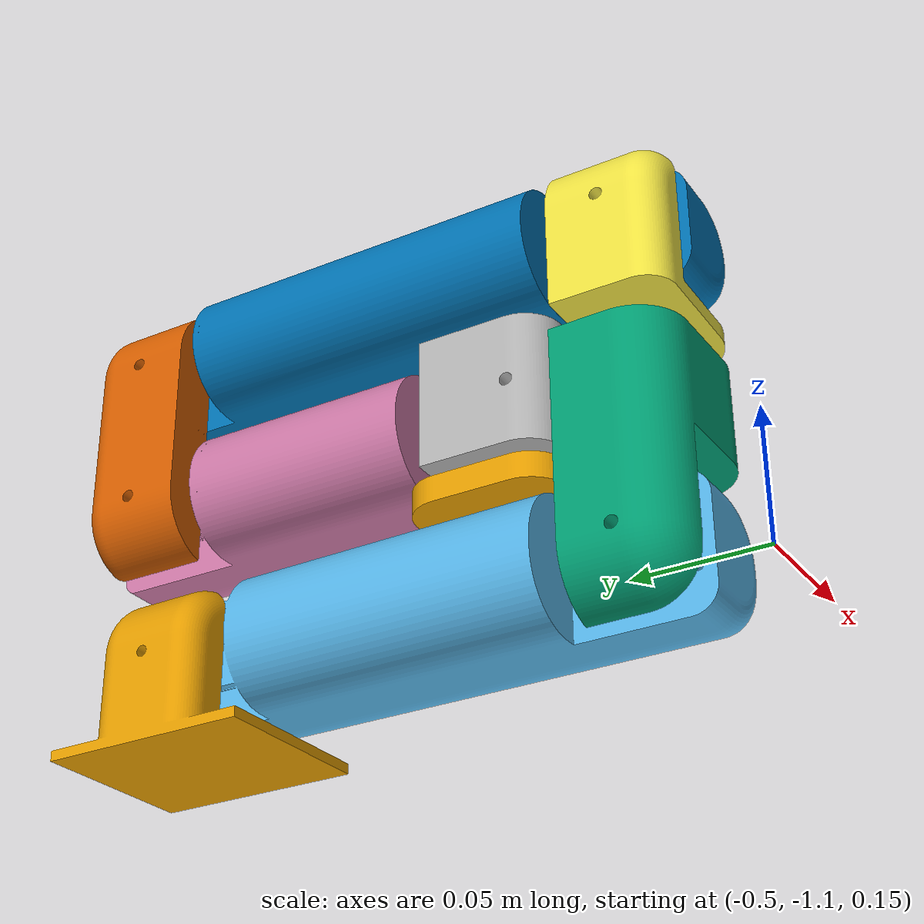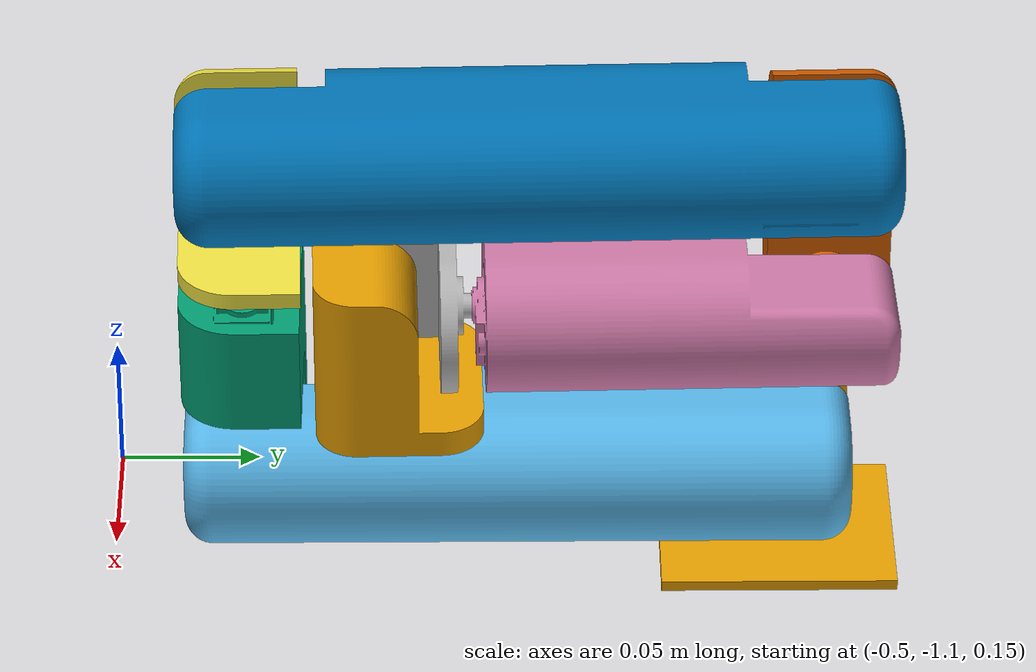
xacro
<?xml version="1.0"?>
<robot xmlns:xacro="http://www.ros.org/wiki/xacro" name="arm2">
    <xacro:arg name="initial_positions_file" default="initial_positions.yaml" />

    <!-- Import arm2 urdf file -->
    <xacro:include filename="$(find arm2_description)/urdf/model.urdf" />

    <!-- Import control_xacro -->
    <xacro:include filename="arm2.ros2_control.xacro" />

    <xacro:arm2_ros2_control name="FakeSystem" />

</robot>

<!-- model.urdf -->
<robot name="arm2">
    <link name="base_link">
        <inertial>
            <origin xyz="-0.4978620384464306 -0.8602252270366714 0.14881945263357563"
                rpy="0.0 0.0 0.0" />
            <mass value="0.5289635796710868" />
            <inertia ixx="0.00034742150662819826" iyy="0.00033835491346662083"
                izz="0.00032653734961951564" ixy="7.4018092550975894e-06"
                iyz="-8.576313641331372e-06" ixz="7.973460484756584e-05" />
        </inertial>
        <visual name="base_link_visual">
            <origin xyz="0.0 0.0 0.0" rpy="0.0 0.0 0.0" />
            <geometry>
                <mesh filename="package://arm2_description/meshes/base_link.stl"
                    scale="0.001 0.001 0.001" />
            </geometry>
        </visual>
        <collision name="base_link_collision">
            <origin xyz="0.0 0.0 0.0" rpy="0.0 0.0 0.0" />
            <geometry>
                <mesh filename="package://arm2_description/meshes/base_link.stl"
                    scale="0.001 0.001 0.001" />
            </geometry>
        </collision>
    </link>
    <link name="arm_1">
        <inertial>
            <origin xyz="0.001468958902272739 -0.09755592156138476 -0.014383547671648955"
                rpy="0.0 -0.0 0.0" />
            <mass value="4.692702425103448" />
            <inertia ixx="0.018450371432606083" iyy="0.0022924316231949238"
                izz="0.018033331112635942" ixy="7.6200128962256e-07" iyz="0.00011766538318312717"
                ixz="3.360163822862139e-07" />
        </inertial>
        <visual name="arm_1_visual">
            <origin xyz="0.09652492537393506 0.9603418934556679 -0.600508235246513"
                rpy="7.893518669522489e-31 -1.5707963267948928 0" />
            <geometry>
                <mesh filename="package://arm2_description/meshes/arm_1.stl"
                    scale="0.001 0.001 0.001" />
            </geometry>
        </visual>
        <collision name="arm_1_collision">
            <origin xyz="0.09652492537393506 0.9603418934556679 -0.600508235246513"
                rpy="7.893518669522489e-31 -1.5707963267948928 0" />
            <geometry>
                <mesh filename="package://arm2_description/meshes/arm_1.stl"
                    scale="0.001 0.001 0.001" />
            </geometry>
        </collision>
    </link>
    <link name="arm_2">
        <inertial>
            <origin xyz="0.04646050510372611 0.00025955415157682184 0.004747670168694924"
                rpy="0.0 -0.0 0.0" />
            <mass value="1.202796183767878" />
            <inertia ixx="0.0006837825937870967" iyy="0.001320285018742151"
                izz="0.0009831727585649652" ixy="-1.961546090556313e-05"
                iyz="-1.193799392462537e-05" ixz="-0.00030321665398197456" />
        </inertial>
        <visual name="arm_2_visual">
            <origin xyz="0.033999999458183584 0.005000003956452446 -0.007500002965190689"
                rpy="1.5707963267949017 2.105251958897056e-15 8.268195910819235e-30" />
            <geometry>
                <mesh filename="package://arm2_description/meshes/arm_2.stl"
                    scale="0.001 0.001 0.001" />
            </geometry>
        </visual>
        <collision name="arm_2_collision">
            <origin xyz="0.033999999458183584 0.005000003956452446 -0.007500002965190689"
                rpy="1.5707963267949017 2.105251958897056e-15 8.268195910819235e-30" />
            <geometry>
                <mesh filename="package://arm2_description/meshes/arm_2.stl"
                    scale="0.001 0.001 0.001" />
            </geometry>
        </collision>
    </link>
    <link name="arm_3">
        <inertial>
            <origin xyz="0.029049151328160827 0.0010410322621982005 -0.01733873965324655"
                rpy="-1.8868807888022411e-90 -0.0 0.0" />
            <mass value="0.46385857953142046" />
            <inertia ixx="0.00018515491356319025" iyy="0.0002833506080626158"
                izz="0.00023136504069264633" ixy="3.3737295296328777e-07"
                iyz="6.001949390543048e-07" ixz="6.527822290304697e-05" />
        </inertial>
        <visual name="arm_3_visual">
            <origin xyz="0.002024925374062079 -1.1475942034556579 0.5320082352465172"
                rpy="1.5707963267948988 4.855169349603931e-17 1.570796326794979" />
            <geometry>
                <mesh filename="package://arm2_description/meshes/arm_3.stl"
                    scale="0.001 0.001 0.001" />
            </geometry>
        </visual>
        <collision name="arm_3_collision">
            <origin xyz="0.002024925374062079 -1.1475942034556579 0.5320082352465172"
                rpy="1.5707963267948988 4.855169349603931e-17 1.570796326794979" />
            <geometry>
                <mesh filename="package://arm2_description/meshes/arm_3.stl"
                    scale="0.001 0.001 0.001" />
            </geometry>
        </collision>
    </link>
    <link name="arm_4">
        <inertial>
            <origin xyz="-0.014457391368257718 0.00014607877796755987 -0.10326662740779441"
                rpy="1.577721810442024e-30 3.469446951950197e-18 -4.930380657631325e-32" />
            <mass value="4.838851771004671" />
            <inertia ixx="0.020512356223124435" iyy="0.021126873659128798"
                izz="0.0023305019136294802" ixy="7.331755276813214e-06" iyz="3.902695496726724e-05"
                ixz="-0.00011555949347316878" />
        </inertial>
        <visual name="arm_4_visual">
            <origin xyz="-0.5746179782026112 0.050697554618139726 -1.1357245098281386"
                rpy="1.5707963267949803 -1.5707963267948017 0" />
            <geometry>
                <mesh filename="package://arm2_description/meshes/arm_4.stl"
                    scale="0.001 0.001 0.001" />
            </geometry>
        </visual>
        <collision name="arm_4_collision">
            <origin xyz="-0.5746179782026112 0.050697554618139726 -1.1357245098281386"
                rpy="1.5707963267949803 -1.5707963267948017 0" />
            <geometry>
                <mesh filename="package://arm2_description/meshes/arm_4.stl"
                    scale="0.001 0.001 0.001" />
            </geometry>
        </collision>
    </link>
    <link name="arm_5">
        <inertial>
            <origin xyz="-0.014560508261271962 -0.030127811176536633 -5.3502466136592376e-05"
                rpy="0.0 4.226342840682485e-43 -1.4012984643248174e-45" />
            <mass value="0.6582703916464507" />
            <inertia ixx="0.0006403762308376801" iyy="0.00012241957194325526"
                izz="0.0005607234072720344" ixy="-1.0392954136307448e-09"
                iyz="-9.114859291995704e-10" ixz="3.6663628621989487e-07" />
        </inertial>
        <visual name="arm_5_visual">
            <origin xyz="0.4893813691929647 -0.3042295778741226 -1.0899899878866102"
                rpy="-1.5707963267947789 0.02238380577389224 7.76271511819099e-14" />
            <geometry>
                <mesh filename="package://arm2_description/meshes/arm_5.stl"
                    scale="0.001 0.001 0.001" />
            </geometry>
        </visual>
        <collision name="arm_5_collision">
            <origin xyz="0.4893813691929647 -0.3042295778741226 -1.0899899878866102"
                rpy="-1.5707963267947789 0.02238380577389224 7.76271511819099e-14" />
            <geometry>
                <mesh filename="package://arm2_description/meshes/arm_5.stl"
                    scale="0.001 0.001 0.001" />
            </geometry>
        </collision>
    </link>
    <link name="arm_6">
        <inertial>
            <origin xyz="-0.0004855266709942896 -0.06097699224107018 -0.013620188460791027"
                rpy="4.552772925024232e-72 -0.0 0.0" />
            <mass value="2.7005914040272287" />
            <inertia ixx="0.004680855610912804" iyy="0.001292119750982407"
                izz="0.0043390020398983604" ixy="0.00014215338177492364"
                iyz="0.00028856231621801035" ixz="-1.52780918652529e-05" />
        </inertial>
        <visual name="arm_6_visual">
            <origin xyz="-0.05397301787405457 0.9382117091042165 -0.5457678701353874"
                rpy="-1.5707963267948204 0.02238380577389022 -1.5707963267949798" />
            <geometry>
                <mesh filename="package://arm2_description/meshes/arm_6.stl"
                    scale="0.001 0.001 0.001" />
            </geometry>
        </visual>
        <collision name="arm_6_collision">
            <origin xyz="-0.05397301787405457 0.9382117091042165 -0.5457678701353874"
                rpy="-1.5707963267948204 0.02238380577389022 -1.5707963267949798" />
            <geometry>
                <mesh filename="package://arm2_description/meshes/arm_6.stl"
                    scale="0.001 0.001 0.001" />
            </geometry>
        </collision>
    </link>
    <link name="arm_7">
        <inertial>
            <origin xyz="0.0004931413793654472 0.024747309214756825 -0.01687305491240437"
                rpy="1.5930919111324523e-58 -0.0 0.0" />
            <mass value="0.47563160728907944" />
            <inertia ixx="0.00022938326215116156" iyy="0.0002178366833349712"
                izz="0.00021098336803199147" ixy="-1.2409722735528996e-08"
                iyz="5.5174108472499914e-05" ixz="5.2149485847680846e-08" />
        </inertial>
        <visual name="arm_7_visual">
            <origin xyz="-0.004999998348927441 -0.0500844757503792 -0.019125780005055545"
                rpy="1.5707963267949732 -0.022383805773805058 1.5707963267949585" />
            <geometry>
                <mesh filename="package://arm2_description/meshes/arm_7.stl"
                    scale="0.001 0.001 0.001" />
            </geometry>
        </visual>
        <collision name="arm_7_collision">
            <origin xyz="-0.004999998348927441 -0.0500844757503792 -0.019125780005055545"
                rpy="1.5707963267949732 -0.022383805773805058 1.5707963267949585" />
            <geometry>
                <mesh filename="package://arm2_description/meshes/arm_7.stl"
                    scale="0.001 0.001 0.001" />
            </geometry>
        </collision>
    </link>
    <link name="hand">
        <inertial>
            <origin xyz="0.018743459451590283 -0.015323223424848785 -0.007866942811366186"
                rpy="0.0 -0.0 0.0" />
            <mass value="0.8723998674547482" />
            <inertia ixx="0.0004954635038616484" iyy="0.00040691383274914727"
                izz="0.0005557626292218918" ixy="-8.464367630564707e-05"
                iyz="-7.153424598795762e-05" ixz="-2.1697164913105272e-05" />
        </inertial>
        <visual name="hand_visual">
            <origin xyz="0.4919713908041492 -0.23783935849352525 -1.0047784740672443"
                rpy="-1.5707963267948934 0.022383805773862155 1.434808728868977e-13" />
            <geometry>
                <mesh filename="package://arm2_description/meshes/hand.stl"
                    scale="0.001 0.001 0.001" />
            </geometry>
        </visual>
        <collision name="hand_collision">
            <origin xyz="0.4919713908041492 -0.23783935849352525 -1.0047784740672443"
                rpy="-1.5707963267948934 0.022383805773862155 1.434808728868977e-13" />
            <geometry>
                <mesh filename="package://arm2_description/meshes/hand.stl"
                    scale="0.001 0.001 0.001" />
            </geometry>
        </collision>
    </link>
    <joint name="servo_1" type="revolute">
        <origin xyz="-0.49253320999999994 -0.8593418934556784 0.16346362308864362"
            rpy="-8.15938374900091e-16 -1.5707963267948966 0" />
        <parent link="base_link" />
        <child link="arm_1" />
        <axis xyz="0.0 -8.714495261313488e-16 1.0" />
        <limit lower="0.0" upper="3.141593" effort="100" velocity="5.25" />
    </joint>
    <joint name="servo_2" type="revolute">
        <origin xyz="0.0 -0.19325231000000004 -1.4210854715202004e-16"
            rpy="3.14159265358979 -0.0 0.0" />
        <parent link="arm_1" />
        <child link="arm_2" />
        <axis xyz="0.0 3.9274139496115e-15 -1.0" />
        <limit lower="-3.141593" upper="0.0" effort="100" velocity="5.25" />
    </joint>
    <joint name="servo_3" type="revolute">
        <origin xyz="0.08449999999999999 -1.4210854715202004e-16 0.010499999999999971"
            rpy="5.1063883277737336e-15 -3.503246160812043e-46 -1.3758697840896148e-60" />
        <parent link="arm_2" />
        <child link="arm_3" />
        <axis xyz="1.0 5.3860925044584005e-45 -6.538970074006538e-14" />
        <limit lower="-1.570796" upper="1.570796" effort="100" velocity="5.25" />
    </joint>
    <joint name="servo_4" type="revolute">
        <origin xyz="0.0454999999999993 0.0002355699999999672 -0.010522339999999986"
            rpy="-6.509950977085272e-28 1.5484125210210091 1.5707963267978051" />
        <parent link="arm_3" />
        <child link="arm_4" />
        <axis xyz="0.9999995084623765 2.766112916432508e-16 7.437694409667683e-08" />
        <limit lower="-3.141593" upper="0.0" effort="100" velocity="5.25" />
    </joint>
    <joint name="servo_5" type="revolute">
        <origin xyz="-0.004962859728564269 0.0017115099999974249 -0.20696316729374573"
            rpy="-2.1125888307746806e-14 -0.022383805773888623 3.141592653589793" />
        <parent link="arm_4" />
        <child link="arm_5" />
        <axis xyz="-0.9997489999999999 -7.494509237472398e-16 0.022381999999999853" />
        <limit lower="-3.141593" upper="0.0" effort="100" velocity="5.25" />
    </joint>
    <joint name="servo_6" type="revolute">
        <origin xyz="-3.09999999927868e-07 -0.060256560000000015 -2.2900000018921675e-06"
            rpy="-1.5707963267949252 -3.3484537742258944e-14 1.5707963267948966" />
        <parent link="arm_5" />
        <child link="arm_6" />
        <axis xyz="1.2618606418140821e-29 -0.022382000000028567 0.9997489999999993" />
        <limit lower="-3.141593" upper="0.0" effort="100" velocity="5.25" />
    </joint>
    <joint name="servo_7" type="revolute">
        <origin xyz="-1.7763568394002506e-16 -0.1265147599999996 -0.012334740000003635"
            rpy="-3.141592653589763 2.524354896707238e-29 7.213280852345444e-43" />
        <parent link="arm_6" />
        <child link="arm_7" />
        <axis xyz="2.8250055649050697e-31 0.999749 0.022381999999998136" />
        <limit lower="-1.570796" upper="1.570796" effort="100" velocity="5.25" />
    </joint>
    <joint name="servo_8" type="revolute">
        <origin xyz="-0.00013366000000001322 0.04122214999999997 -0.009686690000000055"
            rpy="-1.5707963267948346 -1.5707963267948948 0" />
        <parent link="arm_7" />
        <child link="hand" />
        <axis xyz="-0.999749 1.3871370006239592e-15 0.022381999999968965" />
        <limit lower="0.0" upper="3.141593" effort="100" velocity="5.25" />
    </joint>
</robot>
